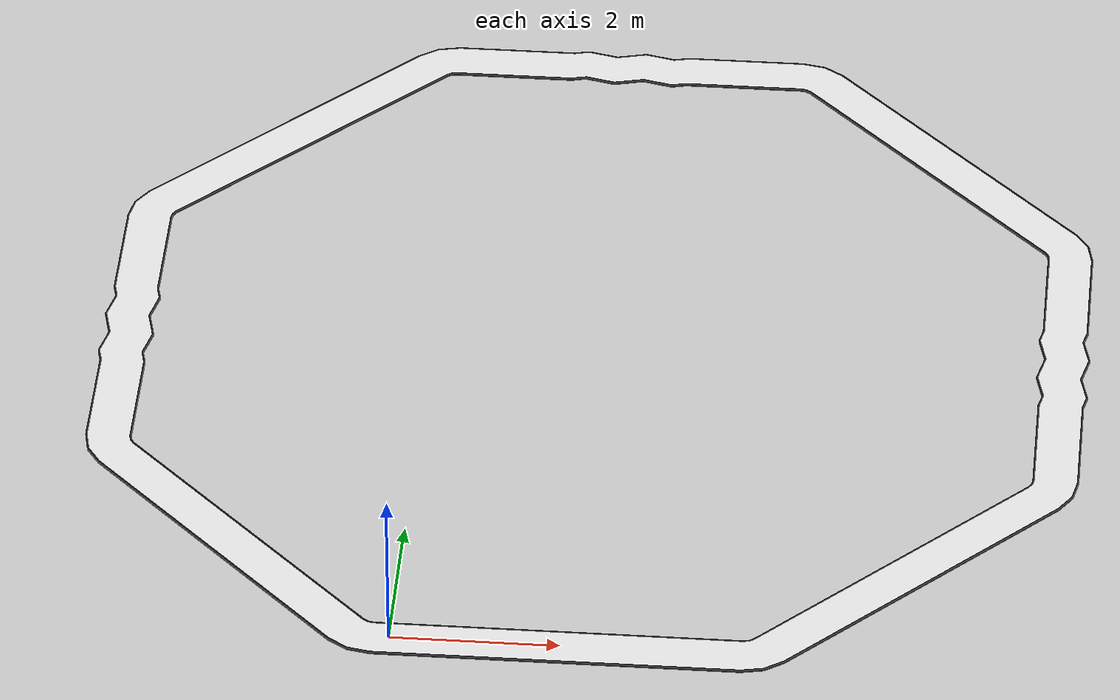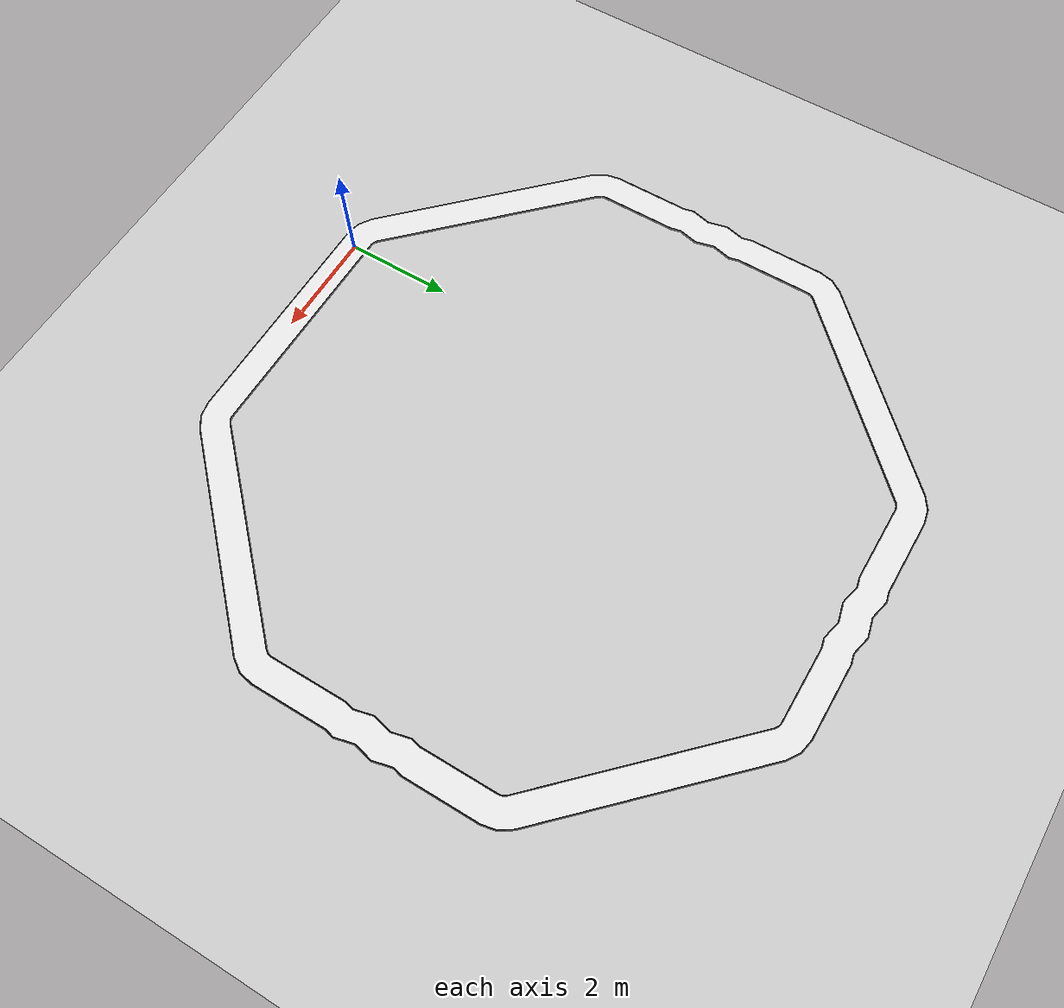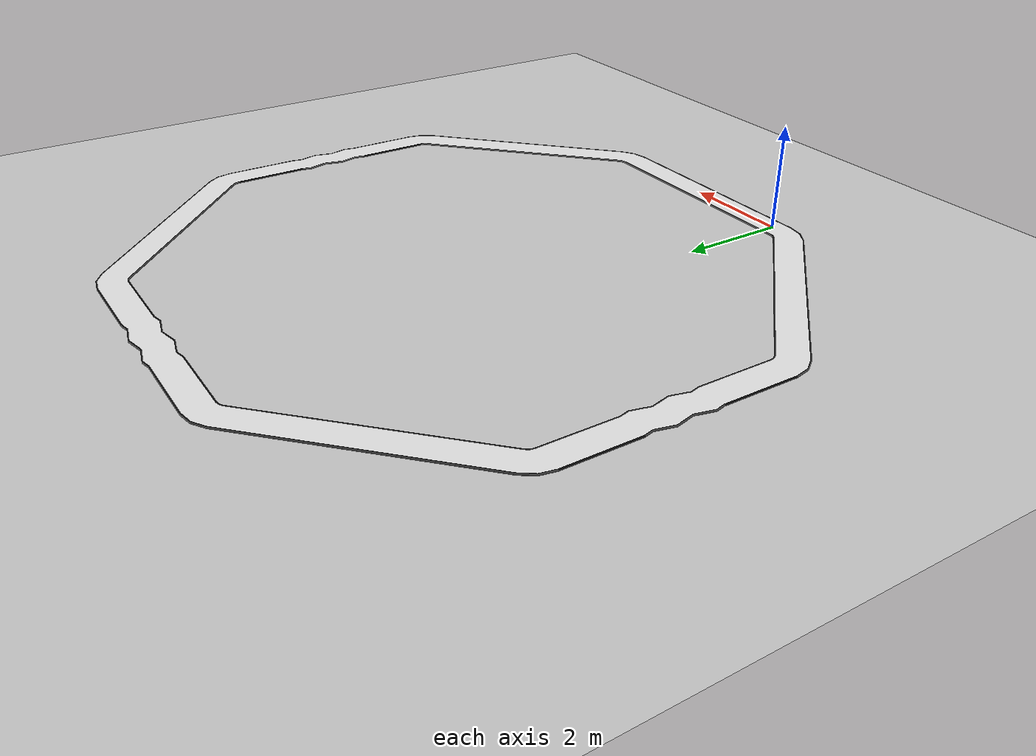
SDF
<?xml version="1.0" ?>
<!--
@author: Benjamin Perseghetti
@email: bperseghetti@rudislabs.com
-->
<sdf version="1.5">
  <world name="nxp_raceway_octagon">
    <scene>
      <ambient>0.5 0.5 0.5 1</ambient>
      <background>0.15 0.15 0.15 1</background>
      <shadows>0</shadows>
    </scene>
    <light type="directional" name="sunSolarNoon">
      <cast_shadows>true</cast_shadows>
      <pose>0 0 500 0 0 0</pose>
      <diffuse>0.95 0.95 0.95 1</diffuse>
      <specular>0.3 0.3 0.3 1</specular>
      <attenuation>
        <range>2000</range>
        <constant>1.0</constant>
        <linear>0.0</linear>
        <quadratic>0.0</quadratic>
      </attenuation>
      <direction>-0.01 0.01 -1.0</direction>
    </light>
    <include>
      <uri>model://ground_plane</uri>
    </include>
    <include>
      <uri>model://nxp_raceway_octagon</uri>
      <pose>-4.0 -.275 -.04 0 0 0</pose>
    </include>

    <physics name='default_physics' default='0' type='ode'>
      <gravity>0 0 -9.8066</gravity>
      <ode>
        <solver>
          <type>quick</type>
          <iters>10</iters>
          <sor>1.3</sor>
          <use_dynamic_moi_rescaling>0</use_dynamic_moi_rescaling>
          <thread_position_correction>1</thread_position_correction>
          <island_threads>1</island_threads>
        </solver>
        <constraints>
          <cfm>0</cfm>
          <erp>0.2</erp>
          <contact_max_correcting_vel>100</contact_max_correcting_vel>
          <contact_surface_layer>0.001</contact_surface_layer>
        </constraints>
      </ode>
      <max_step_size>0.004</max_step_size>
      <real_time_factor>1.0</real_time_factor>
      <real_time_update_rate>250</real_time_update_rate>
      <magnetic_field>6.0e-6 2.3e-5 -4.2e-5</magnetic_field>
    </physics>
  </world>
</sdf>

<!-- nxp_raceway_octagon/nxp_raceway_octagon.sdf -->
<sdf version="1.5">
  <model name='nxp_raceway_octagon'>
    <pose>0 0 0 0 0 0</pose>
    <link name='nxp_raceway_octagon_link'>
      <collision name='nxp_raceway_octagon_collision'>
        <pose>0 0 0 0 0 0</pose>
        <geometry>
          <mesh>
            <scale>1 1 1</scale>
            <uri>model://nxp_raceway_octagon/meshes/CourseOctaSwingInside.stl</uri>
          </mesh>
        </geometry>
      </collision>
      <visual name='nxp_raceway_octagon_inside_visual'>
        <pose>0 0 0 0 0 0</pose>
        <geometry>
          <mesh>
            <scale>1 1 1</scale>
            <uri>model://nxp_raceway_octagon/meshes/CourseOctaSwingInside.stl</uri>
          </mesh>
        </geometry>
        <material>
          <script>
            <name>Gazebo/White</name>
            <uri>file://media/materials/scripts/gazebo.material</uri>
          </script>
        </material>
      </visual>
      <visual name='nxp_raceway_octagon_border_visual'>
        <pose>-.02 -.02 0 0 0 0</pose>
        <geometry>
          <mesh>
            <scale>1 1 1</scale>
            <uri>model://nxp_raceway_octagon/meshes/CourseOctaSwingBorder.stl</uri>
          </mesh>
        </geometry>
        <material>
          <script>
            <name>Gazebo/Black</name>
            <uri>file://media/materials/scripts/gazebo.material</uri>
          </script>
        </material>
      </visual>
    </link>
    <cast_shadows>0</cast_shadows>
    <static>1</static>
  </model>
</sdf>
